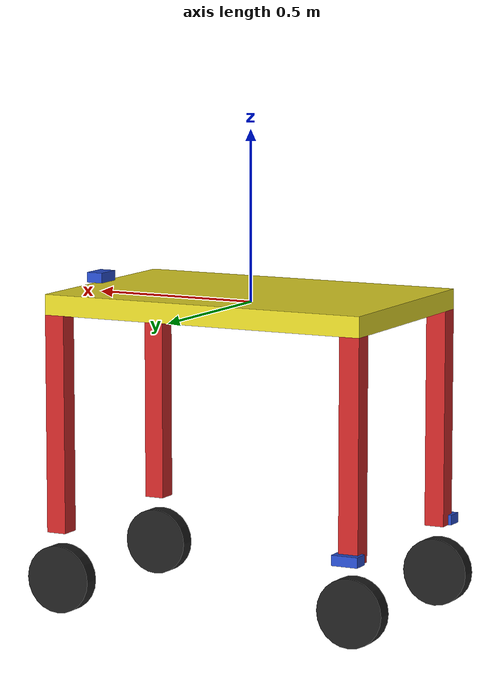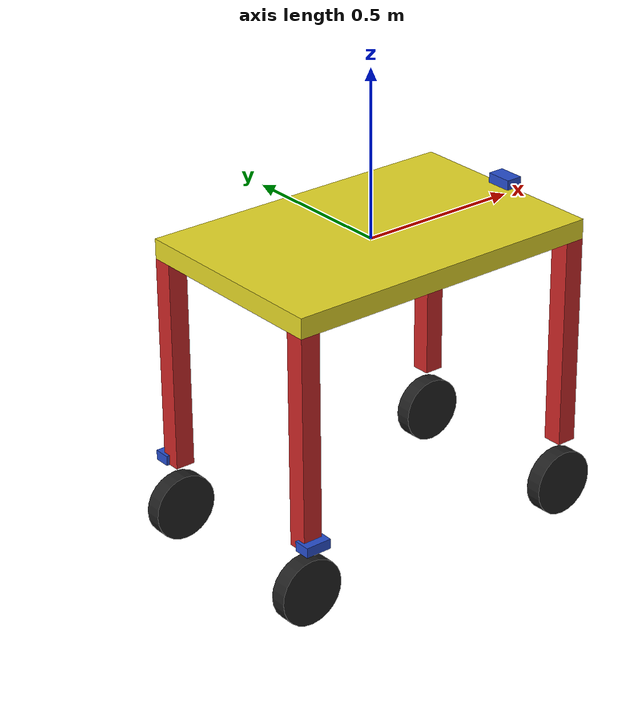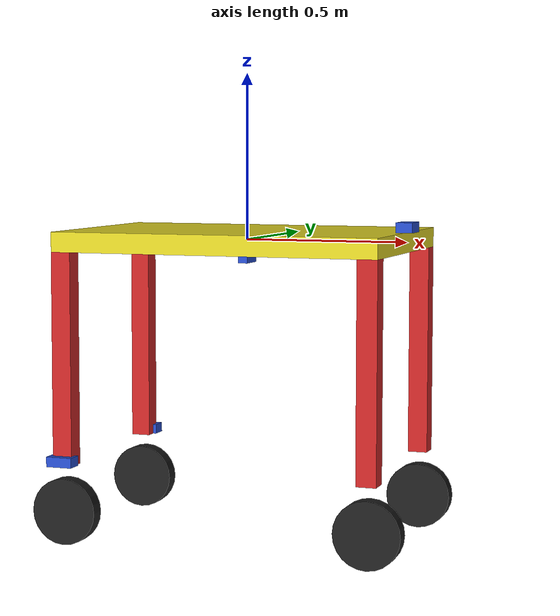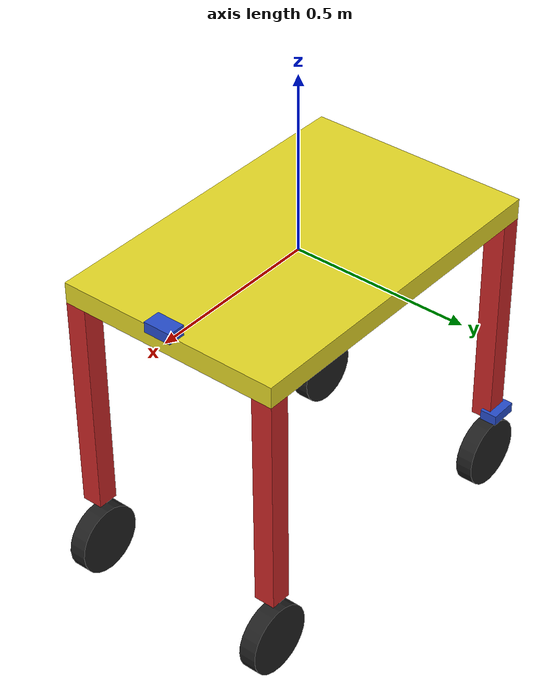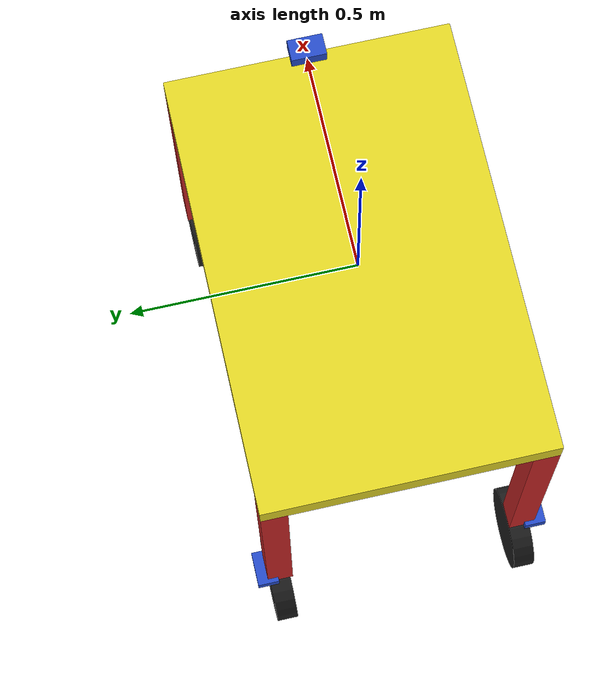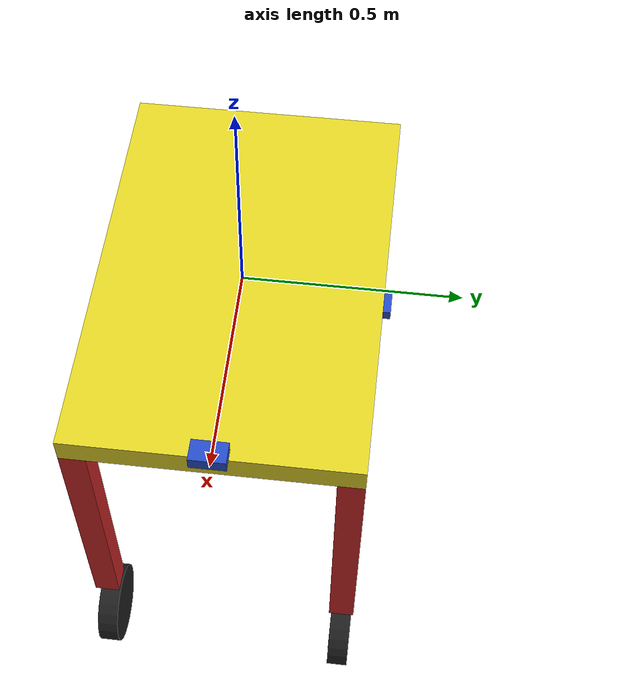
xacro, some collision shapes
<?xml version='1.0'?>

<robot name="agrobot" xmlns:xacro="http://www.ros.org/wiki/xacro">

  <xacro:property name="chassis_x" value="1"/>
  <xacro:property name="chassis_y" value="0.65"/>
  <xacro:property name="chassis_z" value="0.06"/>
  <xacro:property name="chassis_mass" value="50"/>
  <xacro:property name="wheel_radius" value="0.1"/>
  <xacro:property name="wheel_width" value="0.05"/>
  <xacro:property name="wheel_mass" value="5"/>
  <xacro:property name="leg_x" value="0.06"/>
  <xacro:property name="leg_y" value="0.06"/>
  <xacro:property name="leg_z" value="0.75"/>
  <xacro:property name="leg_mass" value="10"/>
  <xacro:property name="camera_x" value="0.05"/>
  <xacro:property name="camera_y" value="0.08"/>
  <xacro:property name="camera_z" value="0.03"/>
  <xacro:property name="camera_mass" value="0.1"/>
  <xacro:property name="steerer_size" value="0.1"/>
  <xacro:property name="steerer_mass" value="2"/>
  <xacro:property name="pi" value="3.1415926"/>

  <xacro:include filename="$(find agrobot)/urdf/macros.xacro"/>
  <xacro:include filename="$(find agrobot)/urdf/materials.xacro"/>

  <gazebo>
    <plugin name="gazebo_ros_control" filename="libgazebo_ros_control.so">
        <robotNamespace>/agrobot</robotNamespace>
    </plugin>
  </gazebo>

  <link name='chassis'>
    <collision name='chassis_collision'>
      <geometry>
        <box size="${chassis_x} ${chassis_y} ${chassis_z}"/>
      </geometry>
    </collision>
    <visual name='chassis_visual'>
      <origin xyz="0 0 0" rpy=" 0 0 0"/>
      <geometry>
        <box size="${chassis_x} ${chassis_y} ${chassis_z}"/>
      </geometry>
    </visual>
  </link>
  <gazebo reference="chassis">
    <material>Gazebo/Yellow</material>
  </gazebo>

  <link name='leg_FL'>
    <xacro:box_inertial name="leg_FL" m="${leg_mass}" x="${leg_x}" y="${leg_y}" z="${leg_z}"/>
    <collision name='leg_FL_collision'>
      <origin xyz="0 0 0" rpy="0 0 0"/>
      <geometry>
        <box size="${leg_x} ${leg_y} ${leg_z}"/>
      </geometry>
    </collision>
    <visual name='leg_FL_visual'>
      <origin xyz="0 0 ${wheel_radius*1.1/2}" rpy="0 0 0"/>
      <geometry>
        <box size="${leg_x} ${leg_y} ${leg_z-wheel_radius*1.1}"/>
      </geometry>
    </visual>
  </link>
  <gazebo reference="leg_FL">
    <material>Gazebo/Red</material>
  </gazebo>

  <joint name="leg_FL_joint" type="fixed">
    <parent link="chassis"/>
    <child link="leg_FL"/>
    <origin xyz="${chassis_x/2 - leg_x/2} ${chassis_y/2 - leg_y/2} ${-chassis_z/2 - leg_z/2}"/>
  </joint>

  <link name='steerer_FL'>
    <xacro:box_inertial name="steerer_FL" m="${steerer_mass}" x="${steerer_size}" y="${steerer_size}" z="${steerer_size}"/>
    <collision name='steerer_FL_collision'>
      <origin xyz="0 0 0" rpy="0 0 0"/>
      <geometry>
        <box size="${steerer_size} ${steerer_size} ${steerer_size}"/>
      </geometry>
    </collision>
    <visual name='steerer_FL_visual'>
      <origin xyz="0 0 0" rpy="0 0 0"/>
      <geometry>
        <box size="${steerer_size/5} ${steerer_size/5} ${steerer_size/5}"/>
      </geometry>
    </visual>
  </link>
  <gazebo reference="steerer_FL">
    <material>Gazebo/Red</material>
  </gazebo>

  <joint name="wheel_FL_position_joint" type="continuous">
    <parent link="leg_FL"/>
    <child link="steerer_FL"/>
    <origin xyz="${0} ${0} ${-leg_z/2 - leg_x/2}"/>
    <axis xyz="0 0 1"/>
  </joint>
  <transmission name="wheel_FL_steerer_transmission">
    <type>transmission_interface/SimpleTransmission</type>
    <joint name="wheel_FL_position_joint">
        <hardwareInterface>hardware_interface/EffortJointInterface</hardwareInterface>
    </joint>
    <actuator name="FL_position_motor">
        <hardwareInterface>hardware_interface/EffortJointInterface</hardwareInterface>
        <mechanicalReduction>1</mechanicalReduction>
    </actuator>
  </transmission>

  <link name='wheel_FL'>
    <xacro:cylinder_inertial name="wheel_FL" m="${wheel_mass}" r="${wheel_radius}" h="${wheel_width}"/>
    <dynamics damping="0.01" friction="1.0"/>
    <collision name='wheel_FL_collision'>
      <origin xyz="0 0 0" rpy="1.5708 0 0"/>
      <geometry>
        <cylinder radius="${wheel_radius}" length="${wheel_width}"/>
      </geometry>
    </collision>
    <visual name='wheel_FL_visual'>
      <origin xyz="0 0 0" rpy="0 0 0"/>
      <geometry>
        <mesh filename="package://agrobot/models/tire/meshes/tire.dae" scale="0.5 0.5 0.5"/>
      </geometry>
    </visual>
  </link>
  <gazebo reference="wheel_FL">
    <material>Gazebo/Black</material>
  </gazebo>

  <joint name="wheel_FL_velocity_joint" type="continuous">
    <parent link="steerer_FL"/>
    <child link="wheel_FL"/>
    <origin xyz="0 0 0"
            rpy="0 0 0"/>
    <axis xyz="0 1 0"/>
  </joint>
  <transmission name="wheel_FL_velocity_transmission">
    <type>transmission_interface/SimpleTransmission</type>
    <joint name="wheel_FL_velocity_joint">
        <hardwareInterface>hardware_interface/EffortJointInterface</hardwareInterface>
    </joint>
    <actuator name="FL_velocity_motor">
        <hardwareInterface>hardware_interface/EffortJointInterface</hardwareInterface>
        <mechanicalReduction>1</mechanicalReduction>
    </actuator>
  </transmission>

  <!-- ##################### all components for FR leg ###############################-->

  <link name='leg_FR'>
    <xacro:box_inertial name="leg_FR" m="${leg_mass}" x="${leg_x}" y="${leg_y}" z="${leg_z}"/>
    <collision name='leg_FR_collision'>
      <origin xyz="0 0 0" rpy="0 0 0"/>
      <geometry>
        <box size="${leg_x} ${leg_y} ${leg_z}"/>
      </geometry>
    </collision>
    <visual name='leg_FR_visual'>
      <origin xyz="0 0 ${wheel_radius*1.1/2}" rpy="0 0 0"/>
      <geometry>
        <box size="${leg_x} ${leg_y} ${leg_z-wheel_radius*1.1}"/>
      </geometry>
    </visual>
  </link>
  <gazebo reference="leg_FR">
    <material>Gazebo/Red</material>
  </gazebo>

  <joint name="leg_FR_joint" type="fixed">
    <parent link="chassis"/>
    <child link="leg_FR"/>
    <origin xyz="${chassis_x/2 - leg_x/2} ${-chassis_y/2 + leg_y/2} ${-chassis_z/2 - leg_z/2}"/>
  </joint>

  <link name='steerer_FR'>
    <xacro:box_inertial name="steerer_FR" m="${steerer_mass}" x="${steerer_size}" y="${steerer_size}" z="${steerer_size}"/>
    <collision name='steerer_FR_collision'>
      <origin xyz="0 0 0" rpy="0 0 0"/>
      <geometry>
        <box size="${steerer_size} ${steerer_size} ${steerer_size}"/>
      </geometry>
    </collision>
    <visual name='steerer_FR_visual'>
      <origin xyz="0 0 0" rpy="0 0 0"/>
      <geometry>
        <box size="${steerer_size/5} ${steerer_size/5} ${steerer_size/5}"/>
      </geometry>
    </visual>
  </link>
  <gazebo reference="steerer_FR">
    <material>Gazebo/Red</material>
  </gazebo>

  <joint name="wheel_FR_position_joint" type="continuous">
    <parent link="leg_FR"/>
    <child link="steerer_FR"/>
    <origin xyz="${0} ${0} ${-leg_z/2 - leg_x/2}"/>
    <axis xyz="0 0 1"/>
  </joint>
  <transmission name="wheel_FR_steerer_transmission">
    <type>transmission_interface/SimpleTransmission</type>
    <joint name="wheel_FR_position_joint">
        <hardwareInterface>hardware_interface/EffortJointInterface</hardwareInterface>
    </joint>
    <actuator name="FR_position_motor">
        <hardwareInterface>hardware_interface/EffortJointInterface</hardwareInterface>
        <mechanicalReduction>1</mechanicalReduction>
    </actuator>
  </transmission>

  <link name='wheel_FR'>
    <xacro:cylinder_inertial name="wheel_FR" m="${wheel_mass}" r="${wheel_radius}" h="${wheel_width}"/>
    <dynamics damping="0.01" friction="1.0"/>
    <collision name='wheel_FR_collision'>
      <origin xyz="0 0 0" rpy="1.5708 0 0"/>
      <geometry>
        <cylinder radius="${wheel_radius}" length="${wheel_width}"/>
      </geometry>
    </collision>
    <visual name='wheel_FR_visual'>
      <origin xyz="0 0 0" rpy="0 0 0"/>
      <geometry>
        <mesh filename="package://agrobot/models/tire/meshes/tire.dae" scale="0.5 0.5 0.5"/>
      </geometry>
    </visual>
  </link>
  <gazebo reference="wheel_FR">
    <material>Gazebo/Black</material>
  </gazebo>

  <joint name="wheel_FR_velocity_joint" type="continuous">
    <parent link="steerer_FR"/>
    <child link="wheel_FR"/>
    <origin xyz="0 0 0"
            rpy="0 0 0"/>
    <axis xyz="0 1 0"/>
  </joint>
  <transmission name="wheel_FR_velocity_transmission">
    <type>transmission_interface/SimpleTransmission</type>
    <joint name="wheel_FR_velocity_joint">
        <hardwareInterface>hardware_interface/EffortJointInterface</hardwareInterface>
    </joint>
    <actuator name="FR_velocity_motor">
        <hardwareInterface>hardware_interface/EffortJointInterface</hardwareInterface>
        <mechanicalReduction>1</mechanicalReduction>
    </actuator>
  </transmission>

  <!-- ################# BL Leg ############################# -->

  <link name='leg_BL'>
    <xacro:box_inertial name="leg_BL" m="${leg_mass}" x="${leg_x}" y="${leg_y}" z="${leg_z}"/>
    <collision name='leg_BL_collision'>
      <origin xyz="0 0 0" rpy="0 0 0"/>
      <geometry>
        <box size="${leg_x} ${leg_y} ${leg_z}"/>
      </geometry>
    </collision>
    <visual name='leg_BL_visual'>
      <origin xyz="0 0 ${wheel_radius*1.1/2}" rpy="0 0 0"/>
      <geometry>
        <box size="${leg_x} ${leg_y} ${leg_z-wheel_radius*1.1}"/>
      </geometry>
    </visual>
  </link>
  <gazebo reference="leg_BL">
    <material>Gazebo/Red</material>
  </gazebo>

  <joint name="leg_BL_joint" type="fixed">
    <parent link="chassis"/>
    <child link="leg_BL"/>
    <origin xyz="${-chassis_x/2 + leg_x/2} ${chassis_y/2 - leg_y/2} ${-chassis_z/2 - leg_z/2}"/>
  </joint>

  <link name='steerer_BL'>
    <xacro:box_inertial name="steerer_BL" m="${steerer_mass}" x="${steerer_size}" y="${steerer_size}" z="${steerer_size}"/>
    <collision name='steerer_BL_collision'>
      <origin xyz="0 0 0" rpy="0 0 0"/>
      <geometry>
        <box size="${steerer_size} ${steerer_size} ${steerer_size}"/>
      </geometry>
    </collision>
    <visual name='steerer_BL_visual'>
      <origin xyz="0 0 0" rpy="0 0 0"/>
      <geometry>
        <box size="${steerer_size/5} ${steerer_size/5} ${steerer_size/5}"/>
      </geometry>
    </visual>
  </link>
  <gazebo reference="steerer_BL">
    <material>Gazebo/Red</material>
  </gazebo>

  <joint name="wheel_BL_position_joint" type="continuous">
    <parent link="leg_BL"/>
    <child link="steerer_BL"/>
    <origin xyz="${0} ${0} ${-leg_z/2 - leg_x/2}"/>
    <axis xyz="0 0 1"/>
  </joint>
  <transmission name="wheel_BL_steerer_transmission">
    <type>transmission_interface/SimpleTransmission</type>
    <joint name="wheel_BL_position_joint">
        <hardwareInterface>hardware_interface/EffortJointInterface</hardwareInterface>
    </joint>
    <actuator name="BL_position_motor">
        <hardwareInterface>hardware_interface/EffortJointInterface</hardwareInterface>
        <mechanicalReduction>1</mechanicalReduction>
    </actuator>
  </transmission>

  <link name='wheel_BL'>
    <xacro:cylinder_inertial name="wheel_BL" m="${wheel_mass}" r="${wheel_radius}" h="${wheel_width}"/>
    <dynamics damping="0.01" friction="1.0"/>
    <collision name='wheel_BL_collision'>
      <origin xyz="0 0 0" rpy="1.5708 0 0"/>
      <geometry>
        <cylinder radius="${wheel_radius}" length="${wheel_width}"/>
      </geometry>
    </collision>
    <visual name='wheel_BL_visual'>
      <origin xyz="0 0 0" rpy="0 0 0"/>
      <geometry>
        <mesh filename="package://agrobot/models/tire/meshes/tire.dae" scale="0.5 0.5 0.5"/>
      </geometry>
    </visual>
  </link>
  <gazebo reference="wheel_BL">
    <material>Gazebo/Black</material>
  </gazebo>

  <joint name="wheel_BL_velocity_joint" type="continuous">
    <parent link="steerer_BL"/>
    <child link="wheel_BL"/>
    <origin xyz="0 0 0"
            rpy="0 0 0"/>
    <axis xyz="0 1 0"/>
  </joint>
  <transmission name="wheel_BL_velocity_transmission">
    <type>transmission_interface/SimpleTransmission</type>
    <joint name="wheel_BL_velocity_joint">
        <hardwareInterface>hardware_interface/EffortJointInterface</hardwareInterface>
    </joint>
    <actuator name="BL_velocity_motor">
        <hardwareInterface>hardware_interface/EffortJointInterface</hardwareInterface>
        <mechanicalReduction>1</mechanicalReduction>
    </actuator>
  </transmission>

  <!-- ################# BR Leg ############################# -->

  <link name='leg_BR'>
    <xacro:box_inertial name="leg_BR" m="${leg_mass}" x="${leg_x}" y="${leg_y}" z="${leg_z}"/>
    <collision name='leg_BR_collision'>
      <origin xyz="0 0 0" rpy="0 0 0"/>
      <geometry>
        <box size="${leg_x} ${leg_y} ${leg_z}"/>
      </geometry>
    </collision>
    <visual name='leg_BR_visual'>
      <origin xyz="0 0 ${wheel_radius*1.1/2}" rpy="0 0 0"/>
      <geometry>
        <box size="${leg_x} ${leg_y} ${leg_z-wheel_radius*1.1}"/>
      </geometry>
    </visual>
  </link>
  <gazebo reference="leg_BR">
    <material>Gazebo/Red</material>
  </gazebo>

  <joint name="leg_BR_joint" type="fixed">
    <parent link="chassis"/>
    <child link="leg_BR"/>
    <origin xyz="${-chassis_x/2 + leg_x/2} ${-chassis_y/2 + leg_y/2} ${-chassis_z/2 - leg_z/2}"/>
  </joint>

  <link name='steerer_BR'>
    <xacro:box_inertial name="steerer_BR" m="${steerer_mass}" x="${steerer_size}" y="${steerer_size}" z="${steerer_size}"/>
    <collision name='steerer_BR_collision'>
      <origin xyz="0 0 0" rpy="0 0 0"/>
      <geometry>
        <box size="${steerer_size} ${steerer_size} ${steerer_size}"/>
      </geometry>
    </collision>
    <visual name='steerer_BR_visual'>
      <origin xyz="0 0 0" rpy="0 0 0"/>
      <geometry>
        <box size="${steerer_size/5} ${steerer_size/5} ${steerer_size/5}"/>
      </geometry>
    </visual>
  </link>
  <gazebo reference="steerer_BR">
    <material>Gazebo/Red</material>
  </gazebo>

  <joint name="wheel_BR_position_joint" type="continuous">
    <parent link="leg_BR"/>
    <child link="steerer_BR"/>
    <origin xyz="${0} ${0} ${-leg_z/2 - leg_x/2}"/>
    <axis xyz="0 0 1"/>
  </joint>
  <transmission name="wheel_BR_steerer_transmission">
    <type>transmission_interface/SimpleTransmission</type>
    <joint name="wheel_BR_position_joint">
        <hardwareInterface>hardware_interface/EffortJointInterface</hardwareInterface>
    </joint>
    <actuator name="BR_position_motor">
        <hardwareInterface>hardware_interface/EffortJointInterface</hardwareInterface>
        <mechanicalReduction>1</mechanicalReduction>
    </actuator>
  </transmission>

  <link name='wheel_BR'>
    <xacro:cylinder_inertial name="wheel_BR" m="${wheel_mass}" r="${wheel_radius}" h="${wheel_width}"/>
    <dynamics damping="0.01" friction="1.0"/>
    <collision name='wheel_BR_collision'>
      <origin xyz="0 0 0" rpy="1.5708 0 0"/>
      <geometry>
        <cylinder radius="${wheel_radius}" length="${wheel_width}"/>
      </geometry>
    </collision>
    <visual name='wheel_BR_visual'>
      <origin xyz="0 0 0" rpy="0 0 0"/>
      <geometry>
        <mesh filename="package://agrobot/models/tire/meshes/tire.dae" scale="0.5 0.5 0.5"/>
      </geometry>
    </visual>
  </link>
  <gazebo reference="wheel_BR">
    <material>Gazebo/Black</material>
  </gazebo>

  <joint name="wheel_BR_velocity_joint" type="continuous">
    <parent link="steerer_BR"/>
    <child link="wheel_BR"/>
    <origin xyz="0 0 0"
            rpy="0 0 0"/>
    <axis xyz="0 1 0"/>
  </joint>
  <transmission name="wheel_BR_velocity_transmission">
    <type>transmission_interface/SimpleTransmission</type>
    <joint name="wheel_BR_velocity_joint">
        <hardwareInterface>hardware_interface/EffortJointInterface</hardwareInterface>
    </joint>
    <actuator name="BR_velocity_motor">
        <hardwareInterface>hardware_interface/EffortJointInterface</hardwareInterface>
        <mechanicalReduction>1</mechanicalReduction>
    </actuator>
  </transmission>

<!-- **************************** front camera ********************************************* -->
 <link name='front_camera'>
    <xacro:box_inertial name="front_camera" m="${camera_mass}" x="${camera_x}" y="${camera_y}" z="${camera_z}"/>
    <collision name='front_camera_collision'>
      <geometry>
        <box size="${camera_x} ${camera_y} ${camera_z}"/>
      </geometry>
    </collision>
    <visual name='front_camera_visual'>
      <origin xyz="0 0 0" rpy="0 0 0"/>
      <geometry>
        <box size="${camera_x} ${camera_y} ${camera_z}"/>
      </geometry>
    </visual>
  </link>
  <joint name="front_camera_joint" type="fixed">
    <parent link="chassis"/>
    <child link="front_camera"/>
    <origin xyz="${chassis_x/2} 0 ${chassis_z/2+camera_z/2}"/>
  </joint>
  <gazebo reference="front_camera">
    <material>Gazebo/Blue</material>
    <sensor type="camera" name="camera_link">
    <update_rate>30.0</update_rate>
    <camera name="front_camera">
      <horizontal_fov>1.3962634</horizontal_fov>
      <image>
        <width>400</width>
        <height>400</height>
        <format>R8G8B8</format>
      </image>
      <clip>
        <near>0.02</near>
        <far>300</far>
      </clip>
      <noise>
        <type>gaussian</type>
        <!-- Noise is sampled independently per pixel on each frame.
              That pixel's noise value is added to each of its color
              channels, which at that point lie in the range [0,1]. -->
        <mean>0.0</mean>
        <stddev>0.007</stddev>
      </noise>
    </camera>
    <plugin name="camera_controller" filename="libgazebo_ros_camera.so">
      <alwaysOn>true</alwaysOn>
      <updateRate>0.0</updateRate>
      <cameraName>agrobot/front_camera</cameraName>
      <imageTopicName>image</imageTopicName>
      <cameraInfoTopicName>front_camera_info</cameraInfoTopicName>
      <frameName>front_camera_frame</frameName>
      <hackBaseline>0.07</hackBaseline>
      <distortionK1>0.0</distortionK1>
      <distortionK2>0.0</distortionK2>
      <distortionK3>0.0</distortionK3>
      <distortionT1>0.0</distortionT1>
      <distortionT2>0.0</distortionT2>
    </plugin>
  </sensor>
  </gazebo>

<!-- **************************** downward camera ********************************************* -->
   <link name='downward_camera'>
    <xacro:box_inertial name="downward_camera" m="${camera_mass}" x="${camera_x}" y="${camera_y}" z="${camera_z}"/>
    <collision name='downward_camera_collision'>
      <geometry>
        <box size="${camera_x} ${camera_y} ${camera_z}"/>
        <origin xyz="0 0 0" rpy="0 0 0"/>
      </geometry>
    </collision>
    <visual name='downward_camera_visual'>
      <origin xyz="0 0 0" rpy="0 0 0"/>
      <geometry>
        <box size="${camera_x} ${camera_y} ${camera_z}"/>
      </geometry>
    </visual>
  </link>
  <joint name="downward_camera_joint" type="fixed">
    <parent link="chassis"/>
    <child link="downward_camera"/>
    <origin xyz="0 0 ${-chassis_z/2-camera_z/2}" rpy="0 ${pi/2} 0"/>
  </joint>
  <gazebo reference="downward_camera">
    <material>Gazebo/Blue</material>
    <sensor type="camera" name="camera_link">
    <update_rate>30.0</update_rate>
    <camera name="downward_camera">
      <horizontal_fov>1.3962634</horizontal_fov>
      <image>
        <width>400</width>
        <height>400</height>
        <format>R8G8B8</format>
      </image>
      <clip>
        <near>0.02</near>
        <far>300</far>
      </clip>
      <noise>
        <type>gaussian</type>
        <!-- Noise is sampled independently per pixel on each frame.
              That pixel's noise value is added to each of its color
              channels, which at that point lie in the range [0,1]. -->
        <mean>0.0</mean>
        <stddev>0.007</stddev>
      </noise>
    </camera>
    <plugin name="camera_controller" filename="libgazebo_ros_camera.so">
      <alwaysOn>true</alwaysOn>
      <updateRate>0.0</updateRate>
      <cameraName>agrobot/downward_camera</cameraName>
      <imageTopicName>image</imageTopicName>
      <cameraInfoTopicName>downward_camera_info</cameraInfoTopicName>
      <frameName>downward_camera_frame</frameName>
      <hackBaseline>0.07</hackBaseline>
      <distortionK1>0.0</distortionK1>
      <distortionK2>0.0</distortionK2>
      <distortionK3>0.0</distortionK3>
      <distortionT1>0.0</distortionT1>
      <distortionT2>0.0</distortionT2>
    </plugin>
  </sensor>
  </gazebo>

<!-- **************************** left side camera ********************************************* -->
   <link name='left_side_camera'>
    <xacro:box_inertial name="left_side_camera" m="${camera_mass}" x="${camera_x}" y="${camera_y}" z="${camera_z}"/>
    <collision name='left_side_camera_collision'>
      <geometry>
        <box size="${camera_x} ${camera_y} ${camera_z}"/>
      </geometry>
    </collision>
    <visual name='left_side_camera_visual'>
      <origin xyz="0 0 0" rpy="0 0 0"/>
      <geometry>
        <box size="${camera_x} ${camera_y} ${camera_z}"/>
      </geometry>
    </visual>
  </link>
  <joint name="left_side_camera_joint" type="fixed">
    <parent link="leg_BL"/>
    <child link="left_side_camera"/>
    <origin xyz="0 ${leg_y/2} -${leg_z*1/3}" rpy="0 0 ${pi/2}"/>
  </joint>
  <gazebo reference="left_side_camera">
    <material>Gazebo/Blue</material>
    <sensor type="camera" name="camera_link">
    <update_rate>30.0</update_rate>
    <camera name="left_side_camera">
      <horizontal_fov>1.3962634</horizontal_fov>
      <image>
        <width>400</width>
        <height>400</height>
        <format>R8G8B8</format>
      </image>
      <clip>
        <near>0.02</near>
        <far>300</far>
      </clip>
      <noise>
        <type>gaussian</type>
        <!-- Noise is sampled independently per pixel on each frame.
              That pixel's noise value is added to each of its color
              channels, which at that point lie in the range [0,1]. -->
        <mean>0.0</mean>
        <stddev>0.007</stddev>
      </noise>
    </camera>
    <plugin name="camera_controller" filename="libgazebo_ros_camera.so">
      <alwaysOn>true</alwaysOn>
      <updateRate>0.0</updateRate>
      <cameraName>agrobot/left_side_camera</cameraName>
      <imageTopicName>image</imageTopicName>
      <cameraInfoTopicName>left_side_camera_info</cameraInfoTopicName>
      <frameName>left_side_camera_frame</frameName>
      <hackBaseline>0.07</hackBaseline>
      <distortionK1>0.0</distortionK1>
      <distortionK2>0.0</distortionK2>
      <distortionK3>0.0</distortionK3>
      <distortionT1>0.0</distortionT1>
      <distortionT2>0.0</distortionT2>
    </plugin>
  </sensor>
  </gazebo>

<!-- **************************** right side camera ********************************************* -->
<link name='right_side_camera'>
    <xacro:box_inertial name="right_side_camera" m="${camera_mass}" x="${camera_x}" y="${camera_y}" z="${camera_z}"/>
    <collision name='right_side_camera_collision'>
      <geometry>
        <box size="${camera_x} ${camera_y} ${camera_z}"/>
      </geometry>
    </collision>
    <visual name='right_side_camera_visual'>
      <origin xyz="0 0 0" rpy="0 0 0"/>
      <geometry>
        <box size="${camera_x} ${camera_y} ${camera_z}"/>
      </geometry>
    </visual>
  </link>
  <joint name="right_side_camera_joint" type="fixed">
    <parent link="leg_BR"/>
    <child link="right_side_camera"/>
    <origin xyz="0 -${leg_y/2} -${leg_z*1/3}" rpy="0 0 -${pi/2}"/>
  </joint>
  <gazebo reference="right_side_camera">
    <material>Gazebo/Blue</material>
    <sensor type="camera" name="camera_link">
    <update_rate>30.0</update_rate>
    <camera name="right_side_camera">
      <horizontal_fov>1.3962634</horizontal_fov>
      <image>
        <width>400</width>
        <height>400</height>
        <format>R8G8B8</format>
      </image>
      <clip>
        <near>0.02</near>
        <far>300</far>
      </clip>
      <noise>
        <type>gaussian</type>
        <!-- Noise is sampled independently per pixel on each frame.
              That pixel's noise value is added to each of its color
              channels, which at that point lie in the range [0,1]. -->
        <mean>0.0</mean>
        <stddev>0.007</stddev>
      </noise>
    </camera>
    <plugin name="camera_controller" filename="libgazebo_ros_camera.so">
      <alwaysOn>true</alwaysOn>
      <updateRate>0.0</updateRate>
      <cameraName>agrobot/right_side_camera</cameraName>
      <imageTopicName>image</imageTopicName>
      <cameraInfoTopicName>right_side_camera_info</cameraInfoTopicName>
      <frameName>right_side_camera_frame</frameName>
      <hackBaseline>0.07</hackBaseline>
      <distortionK1>0.0</distortionK1>
      <distortionK2>0.0</distortionK2>
      <distortionK3>0.0</distortionK3>
      <distortionT1>0.0</distortionT1>
      <distortionT2>0.0</distortionT2>
    </plugin>
  </sensor>
  </gazebo>

<!-- **************************** imu sensor ********************************************* -->
<joint name="imu_joint" type="fixed">
    <axis xyz="1 0 0"/>
    <origin xyz="0 0 ${chassis_z}"/>
    <parent link="chassis"/>
    <child link="imu_link"/>
  </joint>

<link name="imu_link">
  <inertial>
    <mass value="0.001"/>
    <origin rpy="0 0 0" xyz="0 0 0"/>
    <inertia ixx="0.0001" ixy="0" ixz="0" iyy="0.000001" iyz="0" izz="0.0001"/>
  </inertial>
  <visual>
    <origin rpy="0 0 0" xyz="0 0 0"/>
    <geometry>
      <box size="0.001 0.001 0.001"/>
    </geometry>
  </visual>
  <collision>
    <origin rpy="0 0 0" xyz="0 0 0"/>
    <geometry>
      <box size=".1 .1 .1"/>
    </geometry>
  </collision>
</link>

  <gazebo>
    <plugin name="imu_plugin" filename="libgazebo_ros_imu.so">
      <alwaysOn>true</alwaysOn>
      <bodyName>imu_link</bodyName>
      <topicName>agrobot/imu</topicName>
      <serviceName>imu_service</serviceName>
      <gaussianNoise>0.0</gaussianNoise>
      <updateRate>20.0</updateRate>
    </plugin>
  </gazebo>

</robot>
